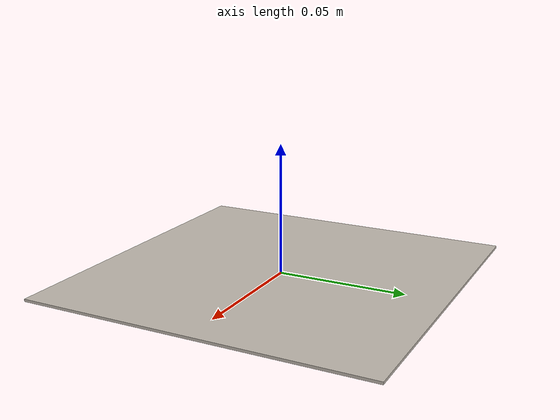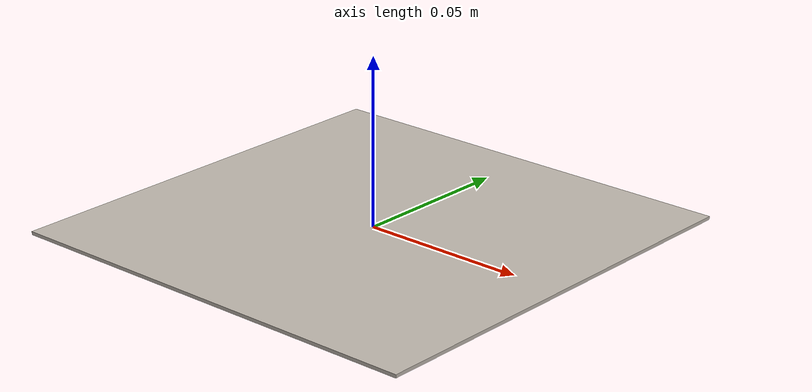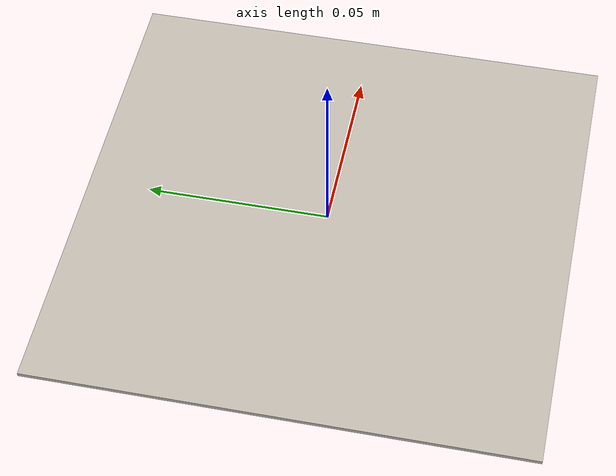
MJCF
<!-- generated by aruco_perception.sim_markers from markers.yml; do not hand-edit -->
<mujoco model="aruco_marker_10">
  <asset>
    <texture name="aruco_10_tex" type="2d" file="marker_10.png"/>
    <material name="aruco_10_mat" texture="aruco_10_tex" texrepeat="1 1"
              texuniform="false" specular="0" shininess="0" reflectance="0" emission="0.35"/>
  </asset>
  <worldbody>
    <body name="root">
      <geom name="marker" type="box" size="0.0666667 0.0666667 0.0005" pos="0 0 0.0005"
            material="aruco_10_mat" mass="0.01" contype="0" conaffinity="0"/>
    </body>
  </worldbody>
</mujoco>
